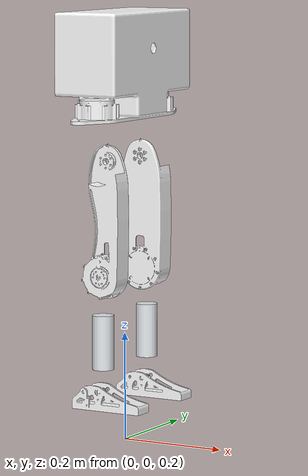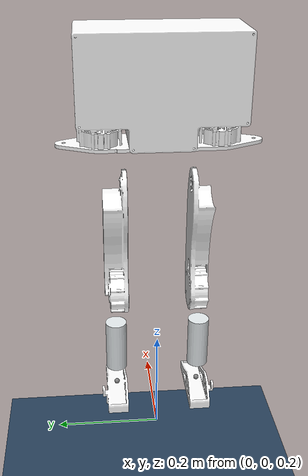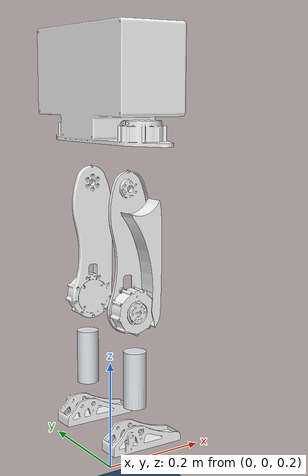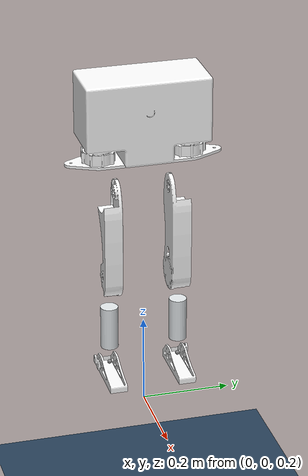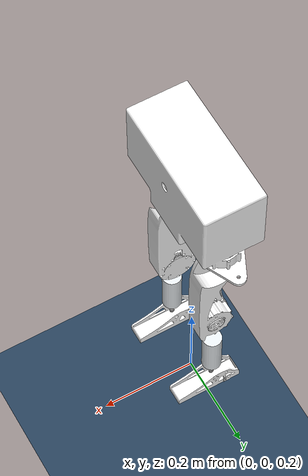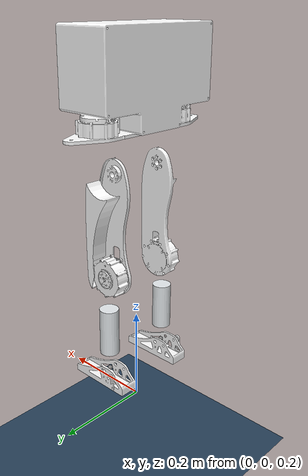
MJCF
<mujoco model="srobot">
  <compiler angle="radian" meshdir="../meshes/" />
  <statistic meansize="0.3" extent="0.887404" center="0.000281117 -0.00176132 -0.134159" />
  <option timestep="0.002" integrator="RK4" />
  <asset>
    <mesh name="base_link" file="base_link.STL" />

    <mesh name="LeftHipYaw_Link" file="LeftHipYaw_Link.STL" />
    <mesh name="LeftHipRoll_Link" file="LeftHipRoll_Link.STL" />
    <mesh name="LeftHipPitch_Link" file="LeftHipPitch_Link.STL" />
    <mesh name="LeftKnee_Link" file="LeftKnee_Link.STL" />
    <mesh name="LeftAnkle_Link" file="LeftAnkle_Link.STL" />

    <mesh name="RightHipYaw_Link" file="RightHipYaw_Link.STL" />
    <mesh name="RightHipRoll_Link" file="RightHipRoll_Link.STL" />
    <mesh name="RightHipPitch_Link" file="RightHipPitch_Link.STL" />
    <mesh name="RightKnee_Link" file="RightKnee_Link.STL" />
    <mesh name="RightAnkle_Link" file="RightAnkle_Link.STL" />

    <texture name="grid" type="2d" builtin="checker" rgb1=".1 .2 .3" rgb2=".2 .3 .4" width="300"
      height="300" />
    <material name="grid" texture="grid" texrepeat="8 8" reflectance=".1" />
  </asset>
  <default>
    <geom contype="0" conaffinity="0" />
  </default>
  <worldbody>
    <light name="top" pos="0 0 10" castshadow="false" />
    <geom size="10 10 .01" type="plane" pos="0 0 0" material="grid" contype="1" conaffinity="1" />

    <body name="Base_Link" pos="0 0 0.80">
      <freejoint />
      <inertial pos="0 0 0.0516" quat="0 0 0 1" mass="3.953" diaginertia="0.05075 0.020650 0.03991" />
      <geom type="mesh" contype="1" conaffinity="1" rgba="1 1 1 1" mesh="base_link" />
      <site name="imu" pos="0 0 0" />
      <body name="LeftHipYaw_Link" pos="0 0.08 0">
        <inertial pos="-0.060922 -9.4557e-05 0.011012" quat="0.973063 5.90255e-05 0.230505 -0.00405378" mass="0.44642" diaginertia="0.000619685 0.000521715 0.00024053"/>
        <joint name="LeftHipYaw_Joint" pos="0 0 0" axis="0 0 1" limited="true" range="-1.047 1.047" />
        <body name="LeftHipRoll_Link" pos="0 0 -0.075002">
          <inertial pos="-0.0042849 0.0019858 0.00027606" quat="0.496338 0.48888 0.505443 0.509089" mass="0.39533" diaginertia="0.000337382 0.000226123 0.000185515"/>
          <joint name="LeftHipRoll_Joint" pos="0 0 0" axis="1 0 0" limited="true" range="-0.785 0.785" />
          <body name="LeftHipPitch_Link" pos="0 0 0">
            <inertial pos="0.0048561 -0.0056835 -0.16396" quat="0.648448 0.0298338 0.00339254 0.760666" mass="0.54469" diaginertia="0.00311894 0.00293698 0.000323608"/>
            <joint name="LeftHipPitch_Joint" pos="0 0 0" axis="0 1 0" limited="true" range="-1.571 0.087" />
            <geom type="mesh" rgba="1 1 1 1" mesh="LeftHipPitch_Link" />
            <body name="LeftKnee_Link" pos="0.00020364 0 -0.21">
              <inertial pos="-0.0012025 0.0014243 -0.10846" quat="0.705229 -0.0210038 0.0125226 0.708558" mass="0.50869" diaginertia="0.00101657 0.000877556 0.000274325"/>
              <joint name="LeftKnee_Joint" pos="0 0 0" axis="0 1 0" limited="true" range="-0.087 2.618" />
              <geom size="0.02 0.05" pos="0 0 -0.12" type="cylinder" rgba="0.89804 0.91765 0.92941 1"/>
              <body name="LeftAnkle_Link" pos="0 0 -0.21">
                <inertial pos="0.010557 0.00021294 -0.022631" quat="-0.0058027 0.728297 -0.0110471 0.685149" mass="0.1402" diaginertia="0.000247388 0.000235662 4.33164e-05"/>
                <joint name="LeftAnkle_Joint" pos="0 0 0" axis="0 1 0" limited="true" range="-1.571 1.571" />
                <geom type="mesh" contype="1" conaffinity="1" rgba="1 1 1 1" mesh="LeftAnkle_Link" condim="4" />
                <site name="LeftEndSite" pos="0 0 0" />
              </body>
            </body>
          </body>
        </body>
      </body>
      <body name="RightHipYaw_Link" pos="0 -0.08 0">
        <inertial pos="-0.060922 9.4554e-05 0.011012" quat="0.973065 -5.89403e-05 0.230497 0.0040538" mass="0.44642" diaginertia="0.000619677 0.000521715 0.000240538"/>
        <joint name="RightHipYaw_Joint" pos="0 0 0" axis="0 0 1" limited="true" range="-1.047 1.047" />
        <body name="RightHipRoll_Link" pos="0 0 -0.075002">
          <inertial pos="-0.0042849 -0.0019858 0.00027605" quat="0.509092 0.50544 0.488877 0.496342" mass="0.39533" diaginertia="0.000337382 0.000226123 0.000185515"/>
          <joint name="RightHipRoll_Joint" pos="0 0 0" axis="1 0 0" limited="true" range="-0.785 0.785" />
          <body name="RightHipPitch_Link" pos="0 0 0">
            <inertial pos="0.0048561 0.0056835 -0.16396" quat="0.760666 0.00339254 0.0298338 0.648448" mass="0.54469" diaginertia="0.00311894 0.00293698 0.000323608"/>
            <joint name="RightHipPitch_Joint" pos="0 0 0" axis="0 1 0" limited="true" range="-1.571 0.087" />
            <geom type="mesh" rgba="1 1 1 1" mesh="RightHipPitch_Link" />
            <body name="RightKnee_Link" pos="0.00020364 0 -0.21">
              <inertial pos="-0.0012024 -0.0014243 -0.10846" quat="0.708558 0.0125227 -0.0210037 0.705228" mass="0.50869" diaginertia="0.00101657 0.000877556 0.000274325"/>
              <joint name="RightKnee_Joint" pos="0 0 0" axis="0 1 0" limited="true" range="-0.087 2.618" />
              <geom size="0.02 0.05" pos="0 0 -0.12" type="cylinder" rgba="0.89804 0.91765 0.92941 1"/>
              <body name="RightAnkle_Link" pos="0 0 -0.21">
                <inertial pos="0.010557 -0.00021294 -0.022631" quat="0.00580329 0.728293 0.0110476 0.685152" mass="0.1402" diaginertia="0.000247388 0.000235662 4.33167e-05"/>
                <joint name="RightAnkle_Joint" pos="0 0 0" axis="0 1 0" limited="true" range="-1.571 1.571" />
                <geom type="mesh" contype="1" conaffinity="1" rgba="1 1 1 1" mesh="RightAnkle_Link" condim="4" />
                <site name="RightEndSite" pos="0 0 0" />
              </body>
            </body>
          </body>
        </body>
      </body>
    </body>
  </worldbody>
  <actuator>
    <position name="LeftHipYaw" joint="LeftHipYaw_Joint" kp="15.0" kv="0.5" />
    <position name="LeftHipRoll" joint="LeftHipRoll_Joint" kp="15.0" kv="0.5" />
    <position name="LeftHipPitch" joint="LeftHipPitch_Joint" kp="15.0" kv="0.5" />
    <position name="LeftKnee" joint="LeftKnee_Joint" kp="15.0" kv="0.5" />
    <position name="LeftAnkle" joint="LeftKnee_Joint" kp="10.0" kv="0.5" />
    <position name="RightHipYaw" joint="RightHipYaw_Joint" kp="15.0" kv="0.5" />
    <position name="RightHipRoll" joint="RightHipRoll_Joint" kp="15.0" kv="0.5" />
    <position name="RightHipPitch" joint="RightHipPitch_Joint" kp="15.0" kv="0.5" />
    <position name="RightKnee" joint="RightKnee_Joint" kp="15.0" kv="0.5" />
    <position name="RightAnkle" joint="RightKnee_Joint" kp="10.0" kv="0.5" />
  </actuator>
  <sensor>
    <jointpos name="LeftHipYaw_pos" joint="LeftHipYaw_Joint" />
    <jointpos name="LeftHipRoll_pos" joint="LeftHipRoll_Joint" />
    <jointpos name="LeftHipPitch_pos" joint="LeftHipPitch_Joint" />
    <jointpos name="LeftKnee_pos" joint="LeftKnee_Joint" />
    <jointpos name="LeftAnkle_pos" joint="LeftAnkle_Joint" />
    <jointpos name="RightHipYaw_pos" joint="RightHipYaw_Joint" />
    <jointpos name="RightHipRoll_pos" joint="RightHipRoll_Joint" />
    <jointpos name="RightHipPitch_pos" joint="RightHipPitch_Joint" />
    <jointpos name="RightKnee_pos" joint="RightKnee_Joint" />
    <jointpos name="RightAnkle_pos" joint="RightAnkle_Joint" />

    <jointvel name="LeftHipYaw_vel" joint="LeftHipYaw_Joint" />
    <jointvel name="LeftHipRoll_vel" joint="LeftHipRoll_Joint" />
    <jointvel name="LeftHipPitch_vel" joint="LeftHipPitch_Joint" />
    <jointvel name="LeftKnee_vel" joint="LeftKnee_Joint" />
    <jointvel name="LeftAnkle_vel" joint="LeftAnkle_Joint" />
    <jointvel name="RightHipYaw_vel" joint="RightHipYaw_Joint" />
    <jointvel name="RightHipRoll_vel" joint="RightHipRoll_Joint" />
    <jointvel name="RightHipPitch_vel" joint="RightHipPitch_Joint" />
    <jointvel name="RightKnee_vel" joint="RightKnee_Joint" />
    <jointvel name="RightAnkle_vel" joint="RightAnkle_Joint" />

    <accelerometer name="BodyAcc" site="imu" />
    <velocimeter name="BodyVel" site="imu" />
    <gyro name="BodyGyro" site="imu" />
    <framepos name="BodyPos" objtype="site" objname="imu" />
    <framequat name="BodyQuat" objtype="site" objname="imu" />
    <framepos name="LeftEndPos" objtype="site" objname="LeftEndSite" />
    <framepos name="RightEndPos" objtype="site" objname="RightEndSite" />
  </sensor>
  <keyframe>
    <key name="home" qpos="0 0 0.50 1 0 0 0 0.0 0.0 -0.5 1.0 -0.5 0.0 0.0 -0.5 1.0 -0.5"
      ctrl="0 0 0 0 0 0 0 0 0 0" />
  </keyframe>
</mujoco>
